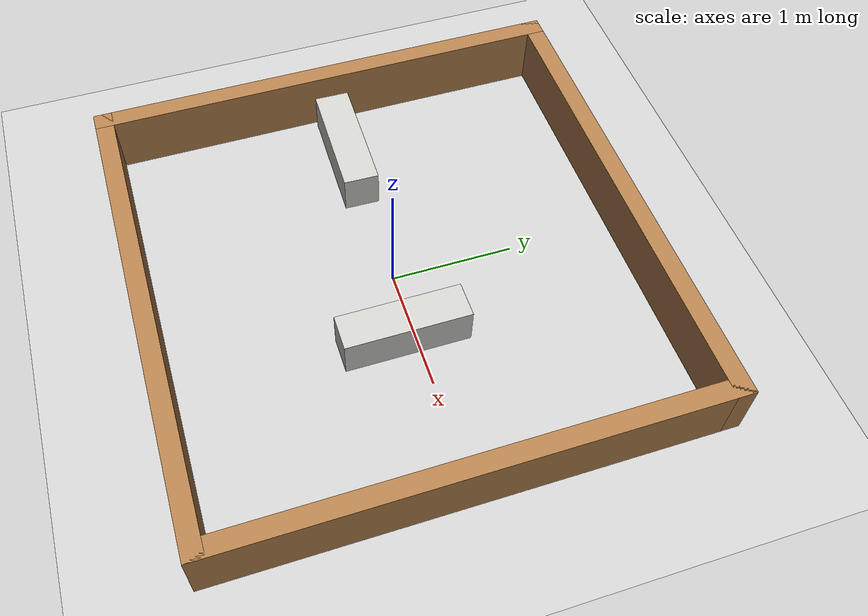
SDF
<sdf version="1.6">
 <world name="default">
  <light name="sun" type="directional">
   <pose>0 0 10 0 -0 0</pose>
   <diffuse>0.8 0.8 0.8 1</diffuse>
   <specular>0.2 0.2 0.2 1</specular>
   <attenuation>
    <range>1000</range>
    <constant>0.9</constant>
    <linear>0.01</linear>
    <quadratic>0.001</quadratic>
   </attenuation>
   <direction>-0.5 0.1 -0.9</direction>
  </light>
  <model name="ground_plane">
   <static>1</static>
   <link name="link">
    <collision name="collision">
     <geometry><plane><normal>0 0 1</normal><size>100 100</size></plane></geometry>
     <surface>
      <contact><collide_bitmask>65535</collide_bitmask></contact>
      <friction><ode><mu>100</mu><mu2>50</mu2></ode></friction>
     </surface>
    </collision>
    <visual name="visual">
     <cast_shadows>0</cast_shadows>
     <geometry><plane><normal>0 0 1</normal><size>100 100</size></plane></geometry>
     <material>
      <script><uri>file://media/materials/scripts/gazebo.material</uri><name>Gazebo/Grey</name></script>
     </material>
    </visual>
   </link>
  </model>
  <physics name="default_physics" default="0" type="ode">
   <real_time_update_rate>1000</real_time_update_rate>
   <max_step_size>0.001</max_step_size>
   <real_time_factor>1</real_time_factor>
   <ode>
    <solver>
     <type>quick</type>
     <iters>150</iters>
     <precon_iters>0</precon_iters>
     <sor>1.4</sor>
     <use_dynamic_moi_rescaling>1</use_dynamic_moi_rescaling>
    </solver>
    <constraints>
     <cfm>1e-05</cfm>
     <erp>0.2</erp>
     <contact_max_correcting_vel>2000</contact_max_correcting_vel>
     <contact_surface_layer>0.01</contact_surface_layer>
    </constraints>
   </ode>
  </physics>
  <scene><ambient>0.4 0.4 0.4 1</ambient><background>0.7 0.7 0.7 1</background><shadows>1</shadows></scene>
  <gravity>0 0 -9.8</gravity>
  <magnetic_field>6e-06 2.3e-05 -4.2e-05</magnetic_field>
  <atmosphere type="adiabatic"/>
  <audio><device>default</device></audio>
  <spherical_coordinates>
   <surface_model>EARTH_WGS84</surface_model>
   <latitude_deg>0</latitude_deg>
   <longitude_deg>0</longitude_deg>
   <elevation>0</elevation>
   <heading_deg>0</heading_deg>
  </spherical_coordinates>
  <model name="turtlebot3_square">
   <link name="Wall_0">
    <collision name="Wall_0_Collision">
     <geometry><box><size>4 0.15 0.5</size></box></geometry>
     <pose>0 0 0.25 0 -0 0</pose>
    </collision>
    <visual name="Wall_0_Visual">
     <pose>0 0 0.25 0 -0 0</pose>
     <geometry><box><size>4 0.15 0.5</size></box></geometry>
     <material>
      <script><uri>file://media/materials/scripts/gazebo.material</uri><name>Gazebo/Wood</name></script>
      <ambient>1 1 1 1</ambient>
     </material>
    </visual>
    <pose>0 1.925 0 0 -0 0</pose>
   </link>
   <link name="Wall_2">
    <collision name="Wall_2_Collision">
     <geometry><box><size>4 0.15 0.5</size></box></geometry>
     <pose>0 0 0.25 0 -0 0</pose>
    </collision>
    <visual name="Wall_2_Visual">
     <pose>0 0 0.25 0 -0 0</pose>
     <geometry><box><size>4 0.15 0.5</size></box></geometry>
     <material>
      <script><uri>file://media/materials/scripts/gazebo.material</uri><name>Gazebo/Wood</name></script>
      <ambient>1 1 1 1</ambient>
     </material>
    </visual>
    <pose>-1.925 0 0 0 0 -1.5708</pose>
   </link>
   <link name="Wall_3">
    <collision name="Wall_3_Collision">
     <geometry><box><size>4 0.15 0.5</size></box></geometry>
     <pose>0 0 0.25 0 -0 0</pose>
    </collision>
    <visual name="Wall_3_Visual">
     <pose>0 0 0.25 0 -0 0</pose>
     <geometry><box><size>4 0.15 0.5</size></box></geometry>
     <material>
      <script><uri>file://media/materials/scripts/gazebo.material</uri><name>Gazebo/Wood</name></script>
      <ambient>1 1 1 1</ambient>
     </material>
    </visual>
    <pose>0 -1.925 0 0 -0 0</pose>
   </link>
   <link name="Wall_4">
    <collision name="Wall_4_Collision">
     <geometry><box><size>4 0.15 0.5</size></box></geometry>
     <pose>0 0 0.25 0 -0 0</pose>
    </collision>
    <visual name="Wall_4_Visual">
     <pose>0 0 0.25 0 -0 0</pose>
     <geometry><box><size>4 0.15 0.5</size></box></geometry>
     <material>
      <script><uri>file://media/materials/scripts/gazebo.material</uri><name>Gazebo/Wood</name></script>
      <ambient>1 1 1 1</ambient>
     </material>
    </visual>
    <pose>1.925 0 0 0 -0 1.5708</pose>
   </link>
   <static>1</static>
  </model>
  <model name="small_table">
   <link name="link">
    <inertial>
     <mass>0.815675</mass>
     <inertia>
      <ixx>0.075238</ixx>
      <ixy>0</ixy>
      <ixz>0</ixz>
      <iyy>0.0128756</iyy>
      <iyz>0</iyz>
      <izz>0.0735833</izz>
     </inertia>
    </inertial>
    <visual name="visual">
     <geometry><box><size>0.287297 1 0.326929</size></box></geometry>
     <material>
      <script><name>Gazebo/CeilingTiled</name><uri>file://media/materials/scripts/gazebo.material</uri></script>
      <shader type="pixel"><normal_map>__default__</normal_map></shader>
      <ambient>0.7 0.7 0.7 1</ambient>
      <diffuse>0.9 0.9 0.9 1</diffuse>
      <specular>0.01 0.01 0.01 1</specular>
      <emissive>0 0 0 1</emissive>
     </material>
    </visual>
    <collision name="collision">
     <geometry><box><size>0.287297 1 0.326929</size></box></geometry>
     <surface>
      <friction>
       <ode><mu>1</mu><mu2>1</mu2><fdir1>0 0 0</fdir1><slip1>0</slip1><slip2>0</slip2></ode>
       <torsional>
        <coefficient>1</coefficient>
        <patch_radius>0</patch_radius>
        <surface_radius>0</surface_radius>
        <use_patch_radius>1</use_patch_radius>
        <ode><slip>0</slip></ode>
       </torsional>
      </friction>
      <bounce><restitution_coefficient>0</restitution_coefficient><threshold>1e+06</threshold></bounce>
      <contact>
       <collide_without_contact>0</collide_without_contact>
       <collide_without_contact_bitmask>1</collide_without_contact_bitmask>
       <collide_bitmask>1</collide_bitmask>
       <ode>
        <soft_cfm>0</soft_cfm>
        <soft_erp>0.2</soft_erp>
        <kp>1e+13</kp>
        <kd>1</kd>
        <max_vel>0.01</max_vel>
        <min_depth>0</min_depth>
       </ode>
       <bullet>
        <split_impulse>1</split_impulse>
        <split_impulse_penetration_threshold>-0.01</split_impulse_penetration_threshold>
        <soft_cfm>0</soft_cfm>
        <soft_erp>0.2</soft_erp>
        <kp>1e+13</kp>
        <kd>1</kd>
       </bullet>
      </contact>
     </surface>
    </collision>
   </link>
   <static>0</static>
   <pose>0.564934 -0.094389 0.163464 0 -0 0</pose>
  </model>
  <model name="small_table_0">
   <link name="link">
    <inertial>
     <mass>0.815675</mass>
     <inertia>
      <ixx>0.075238</ixx>
      <ixy>0</ixy>
      <ixz>0</ixz>
      <iyy>0.0128756</iyy>
      <iyz>0</iyz>
      <izz>0.0735833</izz>
     </inertia>
    </inertial>
    <visual name="visual">
     <geometry><box><size>0.287297 1 0.326929</size></box></geometry>
     <material>
      <script><name>Gazebo/CeilingTiled</name><uri>file://media/materials/scripts/gazebo.material</uri></script>
      <shader type="pixel"><normal_map>__default__</normal_map></shader>
      <ambient>0.7 0.7 0.7 1</ambient>
      <diffuse>0.9 0.9 0.9 1</diffuse>
      <specular>0.01 0.01 0.01 1</specular>
      <emissive>0 0 0 1</emissive>
     </material>
    </visual>
    <collision name="collision">
     <geometry><box><size>0.287297 1 0.326929</size></box></geometry>
     <surface>
      <friction>
       <ode><mu>1</mu><mu2>1</mu2><fdir1>0 0 0</fdir1><slip1>0</slip1><slip2>0</slip2></ode>
       <torsional>
        <coefficient>1</coefficient>
        <patch_radius>0</patch_radius>
        <surface_radius>0</surface_radius>
        <use_patch_radius>1</use_patch_radius>
        <ode><slip>0</slip></ode>
       </torsional>
      </friction>
      <bounce><restitution_coefficient>0</restitution_coefficient><threshold>1e+06</threshold></bounce>
      <contact>
       <collide_without_contact>0</collide_without_contact>
       <collide_without_contact_bitmask>1</collide_without_contact_bitmask>
       <collide_bitmask>1</collide_bitmask>
       <ode>
        <soft_cfm>0</soft_cfm>
        <soft_erp>0.2</soft_erp>
        <kp>1e+13</kp>
        <kd>1</kd>
        <max_vel>0.01</max_vel>
        <min_depth>0</min_depth>
       </ode>
       <bullet>
        <split_impulse>1</split_impulse>
        <split_impulse_penetration_threshold>-0.01</split_impulse_penetration_threshold>
        <soft_cfm>0</soft_cfm>
        <soft_erp>0.2</soft_erp>
        <kp>1e+13</kp>
        <kd>1</kd>
       </bullet>
      </contact>
     </surface>
    </collision>
   </link>
   <static>0</static>
   <pose>-1.30671 -0.004568 0.163464 0 -0 1.54874</pose>
  </model>
 </world>
</sdf>
